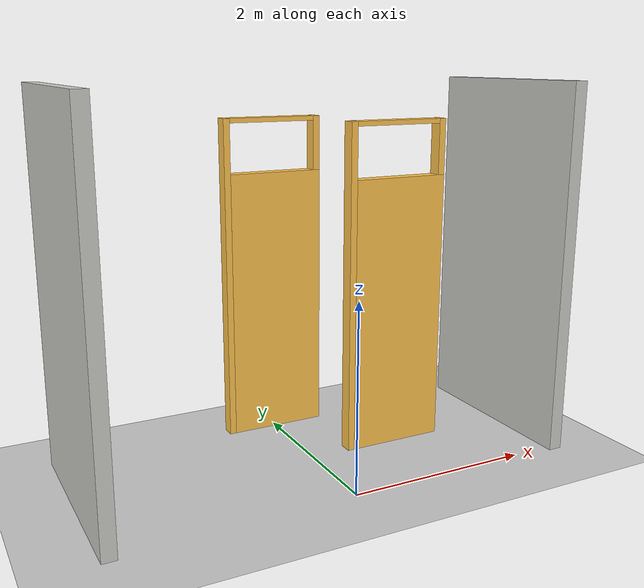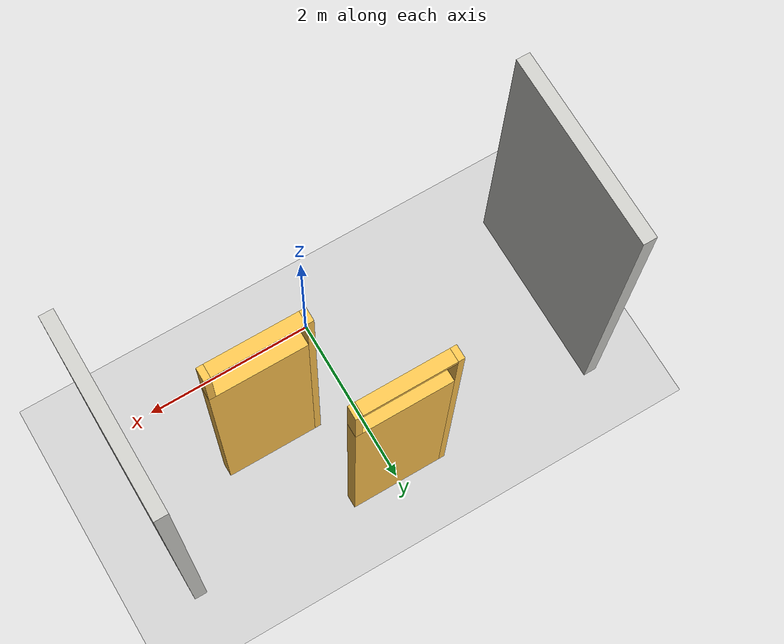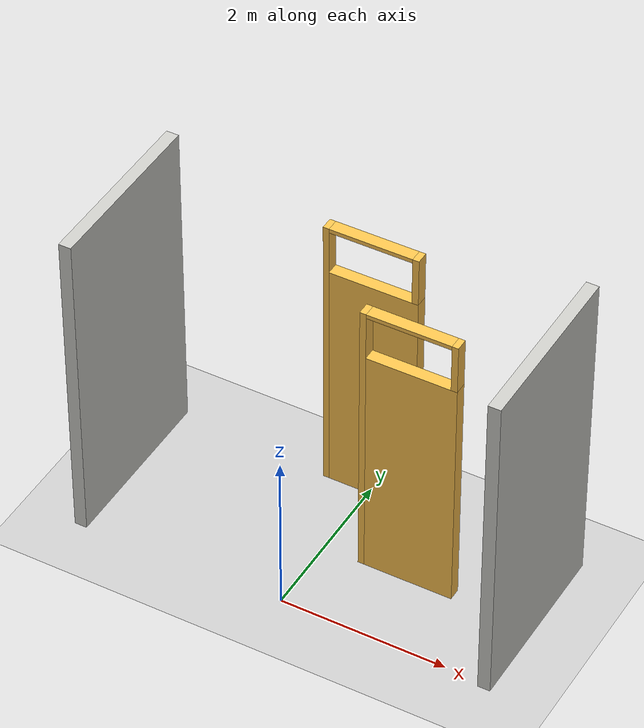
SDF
<sdf version="1.6">
 <world name="default">
  <light name="sun" type="directional">
   <pose>0 0 10 0 -0 0</pose>
   <diffuse>0.8 0.8 0.8 1</diffuse>
   <specular>0.2 0.2 0.2 1</specular>
   <attenuation>
    <range>1000</range>
    <constant>0.9</constant>
    <linear>0.01</linear>
    <quadratic>0.001</quadratic>
   </attenuation>
   <direction>-0.5 0.1 -0.9</direction>
  </light>
  <model name="ground_plane">
   <static>1</static>
   <link name="link">
    <collision name="collision">
     <geometry><plane><normal>0 0 1</normal><size>100 100</size></plane></geometry>
     <surface>
      <contact><collide_bitmask>65535</collide_bitmask></contact>
      <friction><ode><mu>100</mu><mu2>50</mu2></ode></friction>
     </surface>
    </collision>
    <visual name="visual">
     <cast_shadows>0</cast_shadows>
     <geometry><plane><normal>0 0 1</normal><size>100 100</size></plane></geometry>
     <material>
      <script><uri>file://media/materials/scripts/gazebo.material</uri><name>Gazebo/Grey</name></script>
     </material>
    </visual>
   </link>
  </model>
  <gravity>0 0 -9.8</gravity>
  <magnetic_field>6e-06 2.3e-05 -4.2e-05</magnetic_field>
  <atmosphere type="adiabatic"/>
  <physics name="default_physics" default="0" type="ode">
   <max_step_size>0.001</max_step_size>
   <real_time_factor>1</real_time_factor>
   <real_time_update_rate>1000</real_time_update_rate>
  </physics>
  <scene><ambient>0.4 0.4 0.4 1</ambient><background>0.7 0.7 0.7 1</background><shadows>1</shadows></scene>
  <audio><device>default</device></audio>
  <spherical_coordinates>
   <surface_model>EARTH_WGS84</surface_model>
   <latitude_deg>0</latitude_deg>
   <longitude_deg>0</longitude_deg>
   <elevation>0</elevation>
   <heading_deg>0</heading_deg>
  </spherical_coordinates>
  <model name="horizontalControl">
   <pose>0 1 0 0 -0 0</pose>
   <link name="Wall_0">
    <collision name="Wall_0_Collision">
     <geometry><box><size>2.15 0.15 4</size></box></geometry>
     <pose>0 0 2 0 -0 0</pose>
    </collision>
    <visual name="Wall_0_Visual">
     <pose>0 0 2 0 -0 0</pose>
     <geometry><box><size>2.15 0.15 4</size></box></geometry>
     <material>
      <script><uri>file://media/materials/scripts/gazebo.material</uri><name>Gazebo/CeilingTiled</name></script>
      <ambient>1 1 1 1</ambient>
     </material>
     <meta><layer>0</layer></meta>
    </visual>
    <pose>-2.5 -0 0 0 -0 1.5708</pose>
   </link>
   <link name="Wall_2">
    <collision name="Wall_2_Collision">
     <geometry><box><size>2.15 0.15 4</size></box></geometry>
     <pose>0 0 2 0 -0 0</pose>
    </collision>
    <visual name="Wall_2_Visual">
     <pose>0 0 2 0 -0 0</pose>
     <geometry><box><size>2.15 0.15 4</size></box></geometry>
     <material>
      <script><uri>file://media/materials/scripts/gazebo.material</uri><name>Gazebo/CeilingTiled</name></script>
      <ambient>1 1 1 1</ambient>
     </material>
     <meta><layer>0</layer></meta>
    </visual>
    <pose>2.5 -0 0 0 -0 1.5708</pose>
   </link>
   <link name="Wall_4">
    <pose>0 1 0 0 -0 0</pose>
    <visual name="Wall_4_Visual_0">
     <pose>-0.539087 0 1.8 0 -0 0</pose>
     <geometry><box><size>0.071827 0.15 3.6</size></box></geometry>
     <material>
      <script><uri>file://media/materials/scripts/gazebo.material</uri><name>Gazebo/Grey</name></script>
      <ambient>1 0.764706 0.305882 1</ambient>
     </material>
     <meta><layer>0</layer></meta>
    </visual>
    <collision name="Wall_4_Collision_0">
     <geometry><box><size>0.071827 0.15 3.6</size></box></geometry>
     <pose>-0.539087 0 1.8 0 -0 0</pose>
    </collision>
    <visual name="Wall_4_Visual_1">
     <pose>0.035913 0 1.5 0 -0 0</pose>
     <geometry><box><size>1.07817 0.15 3</size></box></geometry>
     <material>
      <script><uri>file://media/materials/scripts/gazebo.material</uri><name>Gazebo/Grey</name></script>
      <ambient>1 0.764706 0.305882 1</ambient>
     </material>
     <meta><layer>0</layer></meta>
    </visual>
    <collision name="Wall_4_Collision_1">
     <geometry><box><size>1.07817 0.15 3</size></box></geometry>
     <pose>0.035913 0 1.5 0 -0 0</pose>
    </collision>
    <visual name="Wall_4_Visual_2">
     <pose>0.535913 0 3.3 0 -0 0</pose>
     <geometry><box><size>0.078173 0.15 0.6</size></box></geometry>
     <material>
      <script><uri>file://media/materials/scripts/gazebo.material</uri><name>Gazebo/Grey</name></script>
      <ambient>1 0.764706 0.305882 1</ambient>
     </material>
     <meta><layer>0</layer></meta>
    </visual>
    <collision name="Wall_4_Collision_2">
     <geometry><box><size>0.078173 0.15 0.6</size></box></geometry>
     <pose>0.535913 0 3.3 0 -0 0</pose>
    </collision>
    <visual name="Wall_4_Visual_3">
     <pose>-0.003173 0 3.575 0 -0 0</pose>
     <geometry><box><size>1 0.15 0.05</size></box></geometry>
     <material>
      <script><uri>file://media/materials/scripts/gazebo.material</uri><name>Gazebo/Grey</name></script>
      <ambient>1 0.764706 0.305882 1</ambient>
     </material>
     <meta><layer>0</layer></meta>
    </visual>
    <collision name="Wall_4_Collision_3">
     <geometry><box><size>1 0.15 0.05</size></box></geometry>
     <pose>-0.003173 0 3.575 0 -0 0</pose>
    </collision>
   </link>
   <link name="Wall_6">
    <pose>1 -0 0 0 -0 0</pose>
    <visual name="Wall_6_Visual_0">
     <pose>-0.5375 0 1.8 0 -0 0</pose>
     <geometry><box><size>0.075 0.15 3.6</size></box></geometry>
     <material>
      <script><uri>file://media/materials/scripts/gazebo.material</uri><name>Gazebo/Grey</name></script>
      <ambient>1 0.764706 0.305882 1</ambient>
     </material>
     <meta><layer>0</layer></meta>
    </visual>
    <collision name="Wall_6_Collision_0">
     <geometry><box><size>0.075 0.15 3.6</size></box></geometry>
     <pose>-0.5375 0 1.8 0 -0 0</pose>
    </collision>
    <visual name="Wall_6_Visual_1">
     <pose>0.0375 0 1.5 0 -0 0</pose>
     <geometry><box><size>1.075 0.15 3</size></box></geometry>
     <material>
      <script><uri>file://media/materials/scripts/gazebo.material</uri><name>Gazebo/Grey</name></script>
      <ambient>1 0.764706 0.305882 1</ambient>
     </material>
     <meta><layer>0</layer></meta>
    </visual>
    <collision name="Wall_6_Collision_1">
     <geometry><box><size>1.075 0.15 3</size></box></geometry>
     <pose>0.0375 0 1.5 0 -0 0</pose>
    </collision>
    <visual name="Wall_6_Visual_2">
     <pose>0.5375 0 3.3 0 -0 0</pose>
     <geometry><box><size>0.075 0.15 0.6</size></box></geometry>
     <material>
      <script><uri>file://media/materials/scripts/gazebo.material</uri><name>Gazebo/Grey</name></script>
      <ambient>1 0.764706 0.305882 1</ambient>
     </material>
     <meta><layer>0</layer></meta>
    </visual>
    <collision name="Wall_6_Collision_2">
     <geometry><box><size>0.075 0.15 0.6</size></box></geometry>
     <pose>0.5375 0 3.3 0 -0 0</pose>
    </collision>
    <visual name="Wall_6_Visual_3">
     <pose>0 0 3.575 0 -0 0</pose>
     <geometry><box><size>1 0.15 0.05</size></box></geometry>
     <material>
      <script><uri>file://media/materials/scripts/gazebo.material</uri><name>Gazebo/Grey</name></script>
      <ambient>1 0.764706 0.305882 1</ambient>
     </material>
     <meta><layer>0</layer></meta>
    </visual>
    <collision name="Wall_6_Collision_3">
     <geometry><box><size>1 0.15 0.05</size></box></geometry>
     <pose>0 0 3.575 0 -0 0</pose>
    </collision>
   </link>
   <static>1</static>
  </model>
 </world>
</sdf>
